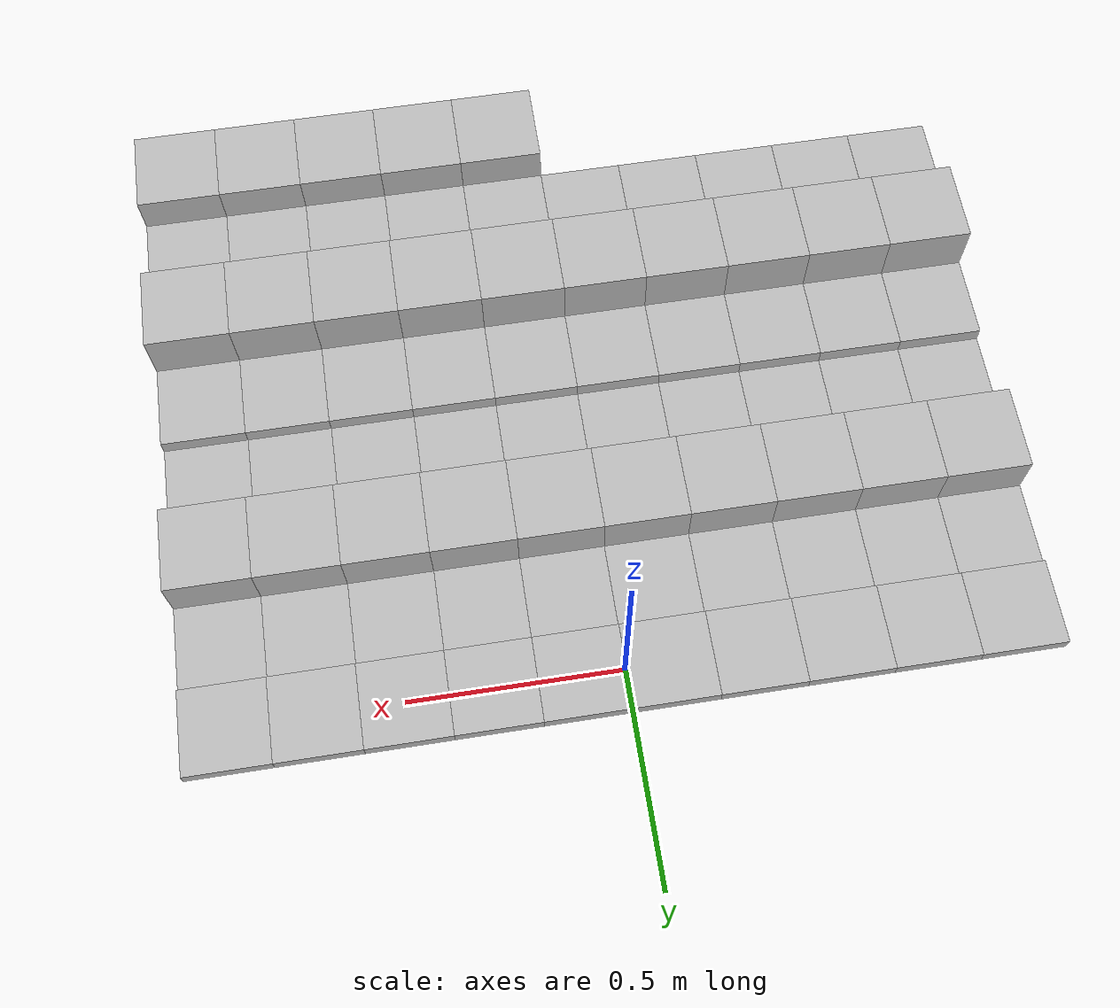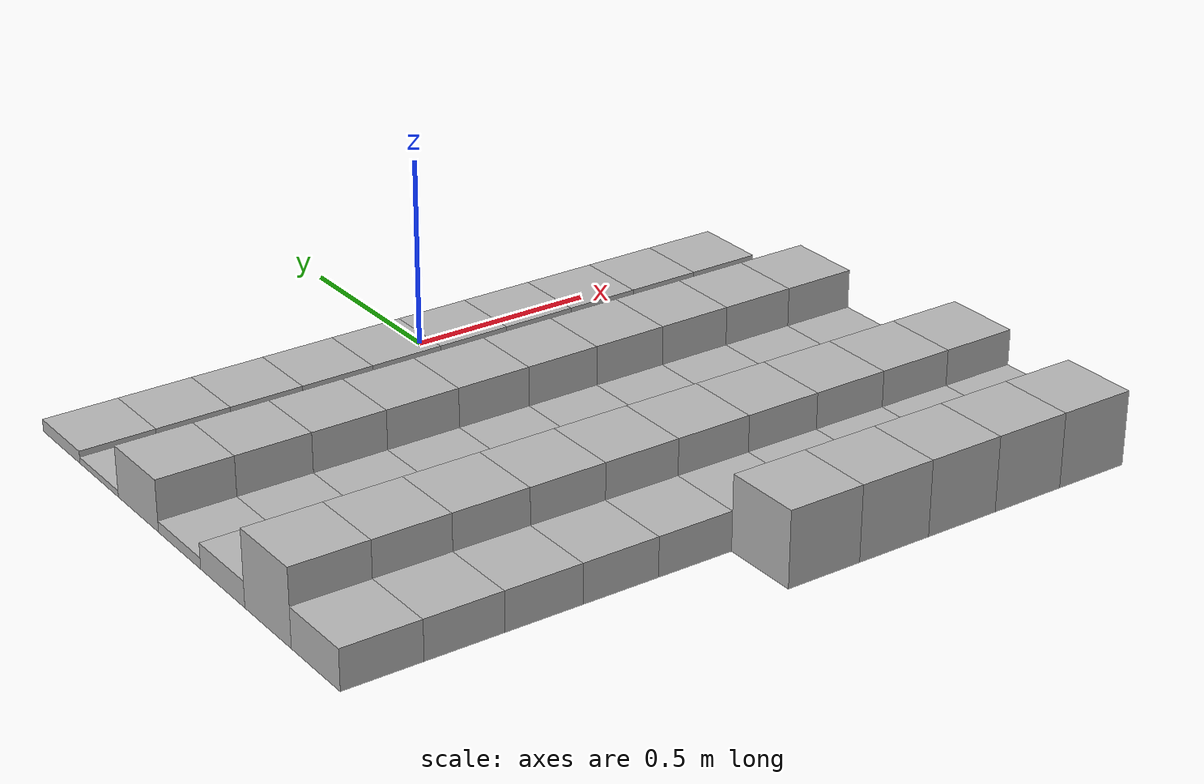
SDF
<sdf version="1.6">
 <model name="Terrain">
  <static>true</static>
  <link name="box_0_0">
   <pose>-0.9 0.0 0.0161761106222 0 0 0</pose>
   <inertial>
    <mass>1.0</mass>
    <inertia><ixx>0.0</ixx><ixy>0.0</ixy><ixz>0.0</ixz><iyy>0.0</iyy><iyz>0.0</iyz><izz>0.0</izz></inertia>
   </inertial>
   <collision name="collision"><geometry><box><size>0.2 0.2 0.0323522212445</size></box></geometry></collision>
   <visual name="visual"><geometry><box><size>0.2 0.2 0.0323522212445</size></box></geometry></visual>
  </link>
  <link name="box_0_1">
   <pose>-0.7 0.0 0.0161761106222 0 0 0</pose>
   <inertial>
    <mass>1.0</mass>
    <inertia><ixx>0.0</ixx><ixy>0.0</ixy><ixz>0.0</ixz><iyy>0.0</iyy><iyz>0.0</iyz><izz>0.0</izz></inertia>
   </inertial>
   <collision name="collision"><geometry><box><size>0.2 0.2 0.0323522212445</size></box></geometry></collision>
   <visual name="visual"><geometry><box><size>0.2 0.2 0.0323522212445</size></box></geometry></visual>
  </link>
  <link name="box_0_2">
   <pose>-0.5 0.0 0.0161761106222 0 0 0</pose>
   <inertial>
    <mass>1.0</mass>
    <inertia><ixx>0.0</ixx><ixy>0.0</ixy><ixz>0.0</ixz><iyy>0.0</iyy><iyz>0.0</iyz><izz>0.0</izz></inertia>
   </inertial>
   <collision name="collision"><geometry><box><size>0.2 0.2 0.0323522212445</size></box></geometry></collision>
   <visual name="visual"><geometry><box><size>0.2 0.2 0.0323522212445</size></box></geometry></visual>
  </link>
  <link name="box_0_3">
   <pose>-0.3 0.0 0.0161761106222 0 0 0</pose>
   <inertial>
    <mass>1.0</mass>
    <inertia><ixx>0.0</ixx><ixy>0.0</ixy><ixz>0.0</ixz><iyy>0.0</iyy><iyz>0.0</iyz><izz>0.0</izz></inertia>
   </inertial>
   <collision name="collision"><geometry><box><size>0.2 0.2 0.0323522212445</size></box></geometry></collision>
   <visual name="visual"><geometry><box><size>0.2 0.2 0.0323522212445</size></box></geometry></visual>
  </link>
  <link name="box_0_4">
   <pose>-0.1 0.0 0.0161761106222 0 0 0</pose>
   <inertial>
    <mass>1.0</mass>
    <inertia><ixx>0.0</ixx><ixy>0.0</ixy><ixz>0.0</ixz><iyy>0.0</iyy><iyz>0.0</iyz><izz>0.0</izz></inertia>
   </inertial>
   <collision name="collision"><geometry><box><size>0.2 0.2 0.0323522212445</size></box></geometry></collision>
   <visual name="visual"><geometry><box><size>0.2 0.2 0.0323522212445</size></box></geometry></visual>
  </link>
  <link name="box_0_5">
   <pose>0.1 0.0 0.0161761106222 0 0 0</pose>
   <inertial>
    <mass>1.0</mass>
    <inertia><ixx>0.0</ixx><ixy>0.0</ixy><ixz>0.0</ixz><iyy>0.0</iyy><iyz>0.0</iyz><izz>0.0</izz></inertia>
   </inertial>
   <collision name="collision"><geometry><box><size>0.2 0.2 0.0323522212445</size></box></geometry></collision>
   <visual name="visual"><geometry><box><size>0.2 0.2 0.0323522212445</size></box></geometry></visual>
  </link>
  <link name="box_0_6">
   <pose>0.3 0.0 0.0161761106222 0 0 0</pose>
   <inertial>
    <mass>1.0</mass>
    <inertia><ixx>0.0</ixx><ixy>0.0</ixy><ixz>0.0</ixz><iyy>0.0</iyy><iyz>0.0</iyz><izz>0.0</izz></inertia>
   </inertial>
   <collision name="collision"><geometry><box><size>0.2 0.2 0.0323522212445</size></box></geometry></collision>
   <visual name="visual"><geometry><box><size>0.2 0.2 0.0323522212445</size></box></geometry></visual>
  </link>
  <link name="box_0_7">
   <pose>0.5 0.0 0.0161761106222 0 0 0</pose>
   <inertial>
    <mass>1.0</mass>
    <inertia><ixx>0.0</ixx><ixy>0.0</ixy><ixz>0.0</ixz><iyy>0.0</iyy><iyz>0.0</iyz><izz>0.0</izz></inertia>
   </inertial>
   <collision name="collision"><geometry><box><size>0.2 0.2 0.0323522212445</size></box></geometry></collision>
   <visual name="visual"><geometry><box><size>0.2 0.2 0.0323522212445</size></box></geometry></visual>
  </link>
  <link name="box_0_8">
   <pose>0.7 0.0 0.0161761106222 0 0 0</pose>
   <inertial>
    <mass>1.0</mass>
    <inertia><ixx>0.0</ixx><ixy>0.0</ixy><ixz>0.0</ixz><iyy>0.0</iyy><iyz>0.0</iyz><izz>0.0</izz></inertia>
   </inertial>
   <collision name="collision"><geometry><box><size>0.2 0.2 0.0323522212445</size></box></geometry></collision>
   <visual name="visual"><geometry><box><size>0.2 0.2 0.0323522212445</size></box></geometry></visual>
  </link>
  <link name="box_0_9">
   <pose>0.9 0.0 0.0161761106222 0 0 0</pose>
   <inertial>
    <mass>1.0</mass>
    <inertia><ixx>0.0</ixx><ixy>0.0</ixy><ixz>0.0</ixz><iyy>0.0</iyy><iyz>0.0</iyz><izz>0.0</izz></inertia>
   </inertial>
   <collision name="collision"><geometry><box><size>0.2 0.2 0.0323522212445</size></box></geometry></collision>
   <visual name="visual"><geometry><box><size>0.2 0.2 0.0323522212445</size></box></geometry></visual>
  </link>
  <link name="box_1_0">
   <pose>-0.9 -0.2 0.00833342037951 0 0 0</pose>
   <inertial>
    <mass>1.0</mass>
    <inertia><ixx>0.0</ixx><ixy>0.0</ixy><ixz>0.0</ixz><iyy>0.0</iyy><iyz>0.0</iyz><izz>0.0</izz></inertia>
   </inertial>
   <collision name="collision"><geometry><box><size>0.2 0.2 0.016666840759</size></box></geometry></collision>
   <visual name="visual"><geometry><box><size>0.2 0.2 0.016666840759</size></box></geometry></visual>
  </link>
  <link name="box_1_1">
   <pose>-0.7 -0.2 0.00833342037951 0 0 0</pose>
   <inertial>
    <mass>1.0</mass>
    <inertia><ixx>0.0</ixx><ixy>0.0</ixy><ixz>0.0</ixz><iyy>0.0</iyy><iyz>0.0</iyz><izz>0.0</izz></inertia>
   </inertial>
   <collision name="collision"><geometry><box><size>0.2 0.2 0.016666840759</size></box></geometry></collision>
   <visual name="visual"><geometry><box><size>0.2 0.2 0.016666840759</size></box></geometry></visual>
  </link>
  <link name="box_1_2">
   <pose>-0.5 -0.2 0.00833342037951 0 0 0</pose>
   <inertial>
    <mass>1.0</mass>
    <inertia><ixx>0.0</ixx><ixy>0.0</ixy><ixz>0.0</ixz><iyy>0.0</iyy><iyz>0.0</iyz><izz>0.0</izz></inertia>
   </inertial>
   <collision name="collision"><geometry><box><size>0.2 0.2 0.016666840759</size></box></geometry></collision>
   <visual name="visual"><geometry><box><size>0.2 0.2 0.016666840759</size></box></geometry></visual>
  </link>
  <link name="box_1_3">
   <pose>-0.3 -0.2 0.00833342037951 0 0 0</pose>
   <inertial>
    <mass>1.0</mass>
    <inertia><ixx>0.0</ixx><ixy>0.0</ixy><ixz>0.0</ixz><iyy>0.0</iyy><iyz>0.0</iyz><izz>0.0</izz></inertia>
   </inertial>
   <collision name="collision"><geometry><box><size>0.2 0.2 0.016666840759</size></box></geometry></collision>
   <visual name="visual"><geometry><box><size>0.2 0.2 0.016666840759</size></box></geometry></visual>
  </link>
  <link name="box_1_4">
   <pose>-0.1 -0.2 0.00833342037951 0 0 0</pose>
   <inertial>
    <mass>1.0</mass>
    <inertia><ixx>0.0</ixx><ixy>0.0</ixy><ixz>0.0</ixz><iyy>0.0</iyy><iyz>0.0</iyz><izz>0.0</izz></inertia>
   </inertial>
   <collision name="collision"><geometry><box><size>0.2 0.2 0.016666840759</size></box></geometry></collision>
   <visual name="visual"><geometry><box><size>0.2 0.2 0.016666840759</size></box></geometry></visual>
  </link>
  <link name="box_1_5">
   <pose>0.1 -0.2 0.00833342037951 0 0 0</pose>
   <inertial>
    <mass>1.0</mass>
    <inertia><ixx>0.0</ixx><ixy>0.0</ixy><ixz>0.0</ixz><iyy>0.0</iyy><iyz>0.0</iyz><izz>0.0</izz></inertia>
   </inertial>
   <collision name="collision"><geometry><box><size>0.2 0.2 0.016666840759</size></box></geometry></collision>
   <visual name="visual"><geometry><box><size>0.2 0.2 0.016666840759</size></box></geometry></visual>
  </link>
  <link name="box_1_6">
   <pose>0.3 -0.2 0.00833342037951 0 0 0</pose>
   <inertial>
    <mass>1.0</mass>
    <inertia><ixx>0.0</ixx><ixy>0.0</ixy><ixz>0.0</ixz><iyy>0.0</iyy><iyz>0.0</iyz><izz>0.0</izz></inertia>
   </inertial>
   <collision name="collision"><geometry><box><size>0.2 0.2 0.016666840759</size></box></geometry></collision>
   <visual name="visual"><geometry><box><size>0.2 0.2 0.016666840759</size></box></geometry></visual>
  </link>
  <link name="box_1_7">
   <pose>0.5 -0.2 0.00833342037951 0 0 0</pose>
   <inertial>
    <mass>1.0</mass>
    <inertia><ixx>0.0</ixx><ixy>0.0</ixy><ixz>0.0</ixz><iyy>0.0</iyy><iyz>0.0</iyz><izz>0.0</izz></inertia>
   </inertial>
   <collision name="collision"><geometry><box><size>0.2 0.2 0.016666840759</size></box></geometry></collision>
   <visual name="visual"><geometry><box><size>0.2 0.2 0.016666840759</size></box></geometry></visual>
  </link>
  <link name="box_1_8">
   <pose>0.7 -0.2 0.00833342037951 0 0 0</pose>
   <inertial>
    <mass>1.0</mass>
    <inertia><ixx>0.0</ixx><ixy>0.0</ixy><ixz>0.0</ixz><iyy>0.0</iyy><iyz>0.0</iyz><izz>0.0</izz></inertia>
   </inertial>
   <collision name="collision"><geometry><box><size>0.2 0.2 0.016666840759</size></box></geometry></collision>
   <visual name="visual"><geometry><box><size>0.2 0.2 0.016666840759</size></box></geometry></visual>
  </link>
  <link name="box_1_9">
   <pose>0.9 -0.2 0.00833342037951 0 0 0</pose>
   <inertial>
    <mass>1.0</mass>
    <inertia><ixx>0.0</ixx><ixy>0.0</ixy><ixz>0.0</ixz><iyy>0.0</iyy><iyz>0.0</iyz><izz>0.0</izz></inertia>
   </inertial>
   <collision name="collision"><geometry><box><size>0.2 0.2 0.016666840759</size></box></geometry></collision>
   <visual name="visual"><geometry><box><size>0.2 0.2 0.016666840759</size></box></geometry></visual>
  </link>
  <link name="box_2_0">
   <pose>-0.9 -0.4 0.0664970218018 0 0 0</pose>
   <inertial>
    <mass>1.0</mass>
    <inertia><ixx>0.0</ixx><ixy>0.0</ixy><ixz>0.0</ixz><iyy>0.0</iyy><iyz>0.0</iyz><izz>0.0</izz></inertia>
   </inertial>
   <collision name="collision"><geometry><box><size>0.2 0.2 0.132994043604</size></box></geometry></collision>
   <visual name="visual"><geometry><box><size>0.2 0.2 0.132994043604</size></box></geometry></visual>
  </link>
  <link name="box_2_1">
   <pose>-0.7 -0.4 0.0664970218018 0 0 0</pose>
   <inertial>
    <mass>1.0</mass>
    <inertia><ixx>0.0</ixx><ixy>0.0</ixy><ixz>0.0</ixz><iyy>0.0</iyy><iyz>0.0</iyz><izz>0.0</izz></inertia>
   </inertial>
   <collision name="collision"><geometry><box><size>0.2 0.2 0.132994043604</size></box></geometry></collision>
   <visual name="visual"><geometry><box><size>0.2 0.2 0.132994043604</size></box></geometry></visual>
  </link>
  <link name="box_2_2">
   <pose>-0.5 -0.4 0.0664970218018 0 0 0</pose>
   <inertial>
    <mass>1.0</mass>
    <inertia><ixx>0.0</ixx><ixy>0.0</ixy><ixz>0.0</ixz><iyy>0.0</iyy><iyz>0.0</iyz><izz>0.0</izz></inertia>
   </inertial>
   <collision name="collision"><geometry><box><size>0.2 0.2 0.132994043604</size></box></geometry></collision>
   <visual name="visual"><geometry><box><size>0.2 0.2 0.132994043604</size></box></geometry></visual>
  </link>
  <link name="box_2_3">
   <pose>-0.3 -0.4 0.0664970218018 0 0 0</pose>
   <inertial>
    <mass>1.0</mass>
    <inertia><ixx>0.0</ixx><ixy>0.0</ixy><ixz>0.0</ixz><iyy>0.0</iyy><iyz>0.0</iyz><izz>0.0</izz></inertia>
   </inertial>
   <collision name="collision"><geometry><box><size>0.2 0.2 0.132994043604</size></box></geometry></collision>
   <visual name="visual"><geometry><box><size>0.2 0.2 0.132994043604</size></box></geometry></visual>
  </link>
  <link name="box_2_4">
   <pose>-0.1 -0.4 0.0664970218018 0 0 0</pose>
   <inertial>
    <mass>1.0</mass>
    <inertia><ixx>0.0</ixx><ixy>0.0</ixy><ixz>0.0</ixz><iyy>0.0</iyy><iyz>0.0</iyz><izz>0.0</izz></inertia>
   </inertial>
   <collision name="collision"><geometry><box><size>0.2 0.2 0.132994043604</size></box></geometry></collision>
   <visual name="visual"><geometry><box><size>0.2 0.2 0.132994043604</size></box></geometry></visual>
  </link>
  <link name="box_2_5">
   <pose>0.1 -0.4 0.0664970218018 0 0 0</pose>
   <inertial>
    <mass>1.0</mass>
    <inertia><ixx>0.0</ixx><ixy>0.0</ixy><ixz>0.0</ixz><iyy>0.0</iyy><iyz>0.0</iyz><izz>0.0</izz></inertia>
   </inertial>
   <collision name="collision"><geometry><box><size>0.2 0.2 0.132994043604</size></box></geometry></collision>
   <visual name="visual"><geometry><box><size>0.2 0.2 0.132994043604</size></box></geometry></visual>
  </link>
  <link name="box_2_6">
   <pose>0.3 -0.4 0.0664970218018 0 0 0</pose>
   <inertial>
    <mass>1.0</mass>
    <inertia><ixx>0.0</ixx><ixy>0.0</ixy><ixz>0.0</ixz><iyy>0.0</iyy><iyz>0.0</iyz><izz>0.0</izz></inertia>
   </inertial>
   <collision name="collision"><geometry><box><size>0.2 0.2 0.132994043604</size></box></geometry></collision>
   <visual name="visual"><geometry><box><size>0.2 0.2 0.132994043604</size></box></geometry></visual>
  </link>
  <link name="box_2_7">
   <pose>0.5 -0.4 0.0664970218018 0 0 0</pose>
   <inertial>
    <mass>1.0</mass>
    <inertia><ixx>0.0</ixx><ixy>0.0</ixy><ixz>0.0</ixz><iyy>0.0</iyy><iyz>0.0</iyz><izz>0.0</izz></inertia>
   </inertial>
   <collision name="collision"><geometry><box><size>0.2 0.2 0.132994043604</size></box></geometry></collision>
   <visual name="visual"><geometry><box><size>0.2 0.2 0.132994043604</size></box></geometry></visual>
  </link>
  <link name="box_2_8">
   <pose>0.7 -0.4 0.0664970218018 0 0 0</pose>
   <inertial>
    <mass>1.0</mass>
    <inertia><ixx>0.0</ixx><ixy>0.0</ixy><ixz>0.0</ixz><iyy>0.0</iyy><iyz>0.0</iyz><izz>0.0</izz></inertia>
   </inertial>
   <collision name="collision"><geometry><box><size>0.2 0.2 0.132994043604</size></box></geometry></collision>
   <visual name="visual"><geometry><box><size>0.2 0.2 0.132994043604</size></box></geometry></visual>
  </link>
  <link name="box_2_9">
   <pose>0.9 -0.4 0.0664970218018 0 0 0</pose>
   <inertial>
    <mass>1.0</mass>
    <inertia><ixx>0.0</ixx><ixy>0.0</ixy><ixz>0.0</ixz><iyy>0.0</iyy><iyz>0.0</iyz><izz>0.0</izz></inertia>
   </inertial>
   <collision name="collision"><geometry><box><size>0.2 0.2 0.132994043604</size></box></geometry></collision>
   <visual name="visual"><geometry><box><size>0.2 0.2 0.132994043604</size></box></geometry></visual>
  </link>
  <link name="box_3_0">
   <pose>-0.9 -0.6 0.0142871577334 0 0 0</pose>
   <inertial>
    <mass>1.0</mass>
    <inertia><ixx>0.0</ixx><ixy>0.0</ixy><ixz>0.0</ixz><iyy>0.0</iyy><iyz>0.0</iyz><izz>0.0</izz></inertia>
   </inertial>
   <collision name="collision"><geometry><box><size>0.2 0.2 0.0285743154668</size></box></geometry></collision>
   <visual name="visual"><geometry><box><size>0.2 0.2 0.0285743154668</size></box></geometry></visual>
  </link>
  <link name="box_3_1">
   <pose>-0.7 -0.6 0.0142871577334 0 0 0</pose>
   <inertial>
    <mass>1.0</mass>
    <inertia><ixx>0.0</ixx><ixy>0.0</ixy><ixz>0.0</ixz><iyy>0.0</iyy><iyz>0.0</iyz><izz>0.0</izz></inertia>
   </inertial>
   <collision name="collision"><geometry><box><size>0.2 0.2 0.0285743154668</size></box></geometry></collision>
   <visual name="visual"><geometry><box><size>0.2 0.2 0.0285743154668</size></box></geometry></visual>
  </link>
  <link name="box_3_2">
   <pose>-0.5 -0.6 0.0142871577334 0 0 0</pose>
   <inertial>
    <mass>1.0</mass>
    <inertia><ixx>0.0</ixx><ixy>0.0</ixy><ixz>0.0</ixz><iyy>0.0</iyy><iyz>0.0</iyz><izz>0.0</izz></inertia>
   </inertial>
   <collision name="collision"><geometry><box><size>0.2 0.2 0.0285743154668</size></box></geometry></collision>
   <visual name="visual"><geometry><box><size>0.2 0.2 0.0285743154668</size></box></geometry></visual>
  </link>
  <link name="box_3_3">
   <pose>-0.3 -0.6 0.0142871577334 0 0 0</pose>
   <inertial>
    <mass>1.0</mass>
    <inertia><ixx>0.0</ixx><ixy>0.0</ixy><ixz>0.0</ixz><iyy>0.0</iyy><iyz>0.0</iyz><izz>0.0</izz></inertia>
   </inertial>
   <collision name="collision"><geometry><box><size>0.2 0.2 0.0285743154668</size></box></geometry></collision>
   <visual name="visual"><geometry><box><size>0.2 0.2 0.0285743154668</size></box></geometry></visual>
  </link>
  <link name="box_3_4">
   <pose>-0.1 -0.6 0.0142871577334 0 0 0</pose>
   <inertial>
    <mass>1.0</mass>
    <inertia><ixx>0.0</ixx><ixy>0.0</ixy><ixz>0.0</ixz><iyy>0.0</iyy><iyz>0.0</iyz><izz>0.0</izz></inertia>
   </inertial>
   <collision name="collision"><geometry><box><size>0.2 0.2 0.0285743154668</size></box></geometry></collision>
   <visual name="visual"><geometry><box><size>0.2 0.2 0.0285743154668</size></box></geometry></visual>
  </link>
  <link name="box_3_5">
   <pose>0.1 -0.6 0.0142871577334 0 0 0</pose>
   <inertial>
    <mass>1.0</mass>
    <inertia><ixx>0.0</ixx><ixy>0.0</ixy><ixz>0.0</ixz><iyy>0.0</iyy><iyz>0.0</iyz><izz>0.0</izz></inertia>
   </inertial>
   <collision name="collision"><geometry><box><size>0.2 0.2 0.0285743154668</size></box></geometry></collision>
   <visual name="visual"><geometry><box><size>0.2 0.2 0.0285743154668</size></box></geometry></visual>
  </link>
  <link name="box_3_6">
   <pose>0.3 -0.6 0.0142871577334 0 0 0</pose>
   <inertial>
    <mass>1.0</mass>
    <inertia><ixx>0.0</ixx><ixy>0.0</ixy><ixz>0.0</ixz><iyy>0.0</iyy><iyz>0.0</iyz><izz>0.0</izz></inertia>
   </inertial>
   <collision name="collision"><geometry><box><size>0.2 0.2 0.0285743154668</size></box></geometry></collision>
   <visual name="visual"><geometry><box><size>0.2 0.2 0.0285743154668</size></box></geometry></visual>
  </link>
  <link name="box_3_7">
   <pose>0.5 -0.6 0.0142871577334 0 0 0</pose>
   <inertial>
    <mass>1.0</mass>
    <inertia><ixx>0.0</ixx><ixy>0.0</ixy><ixz>0.0</ixz><iyy>0.0</iyy><iyz>0.0</iyz><izz>0.0</izz></inertia>
   </inertial>
   <collision name="collision"><geometry><box><size>0.2 0.2 0.0285743154668</size></box></geometry></collision>
   <visual name="visual"><geometry><box><size>0.2 0.2 0.0285743154668</size></box></geometry></visual>
  </link>
  <link name="box_3_8">
   <pose>0.7 -0.6 0.0142871577334 0 0 0</pose>
   <inertial>
    <mass>1.0</mass>
    <inertia><ixx>0.0</ixx><ixy>0.0</ixy><ixz>0.0</ixz><iyy>0.0</iyy><iyz>0.0</iyz><izz>0.0</izz></inertia>
   </inertial>
   <collision name="collision"><geometry><box><size>0.2 0.2 0.0285743154668</size></box></geometry></collision>
   <visual name="visual"><geometry><box><size>0.2 0.2 0.0285743154668</size></box></geometry></visual>
  </link>
  <link name="box_3_9">
   <pose>0.9 -0.6 0.0142871577334 0 0 0</pose>
   <inertial>
    <mass>1.0</mass>
    <inertia><ixx>0.0</ixx><ixy>0.0</ixy><ixz>0.0</ixz><iyy>0.0</iyy><iyz>0.0</iyz><izz>0.0</izz></inertia>
   </inertial>
   <collision name="collision"><geometry><box><size>0.2 0.2 0.0285743154668</size></box></geometry></collision>
   <visual name="visual"><geometry><box><size>0.2 0.2 0.0285743154668</size></box></geometry></visual>
  </link>
  <link name="box_4_0">
   <pose>-0.9 -0.8 0.0331260826066 0 0 0</pose>
   <inertial>
    <mass>1.0</mass>
    <inertia><ixx>0.0</ixx><ixy>0.0</ixy><ixz>0.0</ixz><iyy>0.0</iyy><iyz>0.0</iyz><izz>0.0</izz></inertia>
   </inertial>
   <collision name="collision"><geometry><box><size>0.2 0.2 0.0662521652133</size></box></geometry></collision>
   <visual name="visual"><geometry><box><size>0.2 0.2 0.0662521652133</size></box></geometry></visual>
  </link>
  <link name="box_4_1">
   <pose>-0.7 -0.8 0.0331260826066 0 0 0</pose>
   <inertial>
    <mass>1.0</mass>
    <inertia><ixx>0.0</ixx><ixy>0.0</ixy><ixz>0.0</ixz><iyy>0.0</iyy><iyz>0.0</iyz><izz>0.0</izz></inertia>
   </inertial>
   <collision name="collision"><geometry><box><size>0.2 0.2 0.0662521652133</size></box></geometry></collision>
   <visual name="visual"><geometry><box><size>0.2 0.2 0.0662521652133</size></box></geometry></visual>
  </link>
  <link name="box_4_2">
   <pose>-0.5 -0.8 0.0331260826066 0 0 0</pose>
   <inertial>
    <mass>1.0</mass>
    <inertia><ixx>0.0</ixx><ixy>0.0</ixy><ixz>0.0</ixz><iyy>0.0</iyy><iyz>0.0</iyz><izz>0.0</izz></inertia>
   </inertial>
   <collision name="collision"><geometry><box><size>0.2 0.2 0.0662521652133</size></box></geometry></collision>
   <visual name="visual"><geometry><box><size>0.2 0.2 0.0662521652133</size></box></geometry></visual>
  </link>
  <link name="box_4_3">
   <pose>-0.3 -0.8 0.0331260826066 0 0 0</pose>
   <inertial>
    <mass>1.0</mass>
    <inertia><ixx>0.0</ixx><ixy>0.0</ixy><ixz>0.0</ixz><iyy>0.0</iyy><iyz>0.0</iyz><izz>0.0</izz></inertia>
   </inertial>
   <collision name="collision"><geometry><box><size>0.2 0.2 0.0662521652133</size></box></geometry></collision>
   <visual name="visual"><geometry><box><size>0.2 0.2 0.0662521652133</size></box></geometry></visual>
  </link>
  <link name="box_4_4">
   <pose>-0.1 -0.8 0.0331260826066 0 0 0</pose>
   <inertial>
    <mass>1.0</mass>
    <inertia><ixx>0.0</ixx><ixy>0.0</ixy><ixz>0.0</ixz><iyy>0.0</iyy><iyz>0.0</iyz><izz>0.0</izz></inertia>
   </inertial>
   <collision name="collision"><geometry><box><size>0.2 0.2 0.0662521652133</size></box></geometry></collision>
   <visual name="visual"><geometry><box><size>0.2 0.2 0.0662521652133</size></box></geometry></visual>
  </link>
  <link name="box_4_5">
   <pose>0.1 -0.8 0.0331260826066 0 0 0</pose>
   <inertial>
    <mass>1.0</mass>
    <inertia><ixx>0.0</ixx><ixy>0.0</ixy><ixz>0.0</ixz><iyy>0.0</iyy><iyz>0.0</iyz><izz>0.0</izz></inertia>
   </inertial>
   <collision name="collision"><geometry><box><size>0.2 0.2 0.0662521652133</size></box></geometry></collision>
   <visual name="visual"><geometry><box><size>0.2 0.2 0.0662521652133</size></box></geometry></visual>
  </link>
  <link name="box_4_6">
   <pose>0.3 -0.8 0.0331260826066 0 0 0</pose>
   <inertial>
    <mass>1.0</mass>
    <inertia><ixx>0.0</ixx><ixy>0.0</ixy><ixz>0.0</ixz><iyy>0.0</iyy><iyz>0.0</iyz><izz>0.0</izz></inertia>
   </inertial>
   <collision name="collision"><geometry><box><size>0.2 0.2 0.0662521652133</size></box></geometry></collision>
   <visual name="visual"><geometry><box><size>0.2 0.2 0.0662521652133</size></box></geometry></visual>
  </link>
  <link name="box_4_7">
   <pose>0.5 -0.8 0.0331260826066 0 0 0</pose>
   <inertial>
    <mass>1.0</mass>
    <inertia><ixx>0.0</ixx><ixy>0.0</ixy><ixz>0.0</ixz><iyy>0.0</iyy><iyz>0.0</iyz><izz>0.0</izz></inertia>
   </inertial>
   <collision name="collision"><geometry><box><size>0.2 0.2 0.0662521652133</size></box></geometry></collision>
   <visual name="visual"><geometry><box><size>0.2 0.2 0.0662521652133</size></box></geometry></visual>
  </link>
  <link name="box_4_8">
   <pose>0.7 -0.8 0.0331260826066 0 0 0</pose>
   <inertial>
    <mass>1.0</mass>
    <inertia><ixx>0.0</ixx><ixy>0.0</ixy><ixz>0.0</ixz><iyy>0.0</iyy><iyz>0.0</iyz><izz>0.0</izz></inertia>
   </inertial>
   <collision name="collision"><geometry><box><size>0.2 0.2 0.0662521652133</size></box></geometry></collision>
   <visual name="visual"><geometry><box><size>0.2 0.2 0.0662521652133</size></box></geometry></visual>
  </link>
  <link name="box_4_9">
   <pose>0.9 -0.8 0.0331260826066 0 0 0</pose>
   <inertial>
    <mass>1.0</mass>
    <inertia><ixx>0.0</ixx><ixy>0.0</ixy><ixz>0.0</ixz><iyy>0.0</iyy><iyz>0.0</iyz><izz>0.0</izz></inertia>
   </inertial>
   <collision name="collision"><geometry><box><size>0.2 0.2 0.0662521652133</size></box></geometry></collision>
   <visual name="visual"><geometry><box><size>0.2 0.2 0.0662521652133</size></box></geometry></visual>
  </link>
  <link name="box_5_0">
   <pose>-0.9 -1.0 0.0975700708406 0 0 0</pose>
   <inertial>
    <mass>1.0</mass>
    <inertia><ixx>0.0</ixx><ixy>0.0</ixy><ixz>0.0</ixz><iyy>0.0</iyy><iyz>0.0</iyz><izz>0.0</izz></inertia>
   </inertial>
   <collision name="collision"><geometry><box><size>0.2 0.2 0.195140141681</size></box></geometry></collision>
   <visual name="visual"><geometry><box><size>0.2 0.2 0.195140141681</size></box></geometry></visual>
  </link>
  <link name="box_5_1">
   <pose>-0.7 -1.0 0.0975700708406 0 0 0</pose>
   <inertial>
    <mass>1.0</mass>
    <inertia><ixx>0.0</ixx><ixy>0.0</ixy><ixz>0.0</ixz><iyy>0.0</iyy><iyz>0.0</iyz><izz>0.0</izz></inertia>
   </inertial>
   <collision name="collision"><geometry><box><size>0.2 0.2 0.195140141681</size></box></geometry></collision>
   <visual name="visual"><geometry><box><size>0.2 0.2 0.195140141681</size></box></geometry></visual>
  </link>
  <link name="box_5_2">
   <pose>-0.5 -1.0 0.0975700708406 0 0 0</pose>
   <inertial>
    <mass>1.0</mass>
    <inertia><ixx>0.0</ixx><ixy>0.0</ixy><ixz>0.0</ixz><iyy>0.0</iyy><iyz>0.0</iyz><izz>0.0</izz></inertia>
   </inertial>
   <collision name="collision"><geometry><box><size>0.2 0.2 0.195140141681</size></box></geometry></collision>
   <visual name="visual"><geometry><box><size>0.2 0.2 0.195140141681</size></box></geometry></visual>
  </link>
  <link name="box_5_3">
   <pose>-0.3 -1.0 0.0975700708406 0 0 0</pose>
   <inertial>
    <mass>1.0</mass>
    <inertia><ixx>0.0</ixx><ixy>0.0</ixy><ixz>0.0</ixz><iyy>0.0</iyy><iyz>0.0</iyz><izz>0.0</izz></inertia>
   </inertial>
   <collision name="collision"><geometry><box><size>0.2 0.2 0.195140141681</size></box></geometry></collision>
   <visual name="visual"><geometry><box><size>0.2 0.2 0.195140141681</size></box></geometry></visual>
  </link>
  <link name="box_5_4">
   <pose>-0.1 -1.0 0.0975700708406 0 0 0</pose>
   <inertial>
    <mass>1.0</mass>
    <inertia><ixx>0.0</ixx><ixy>0.0</ixy><ixz>0.0</ixz><iyy>0.0</iyy><iyz>0.0</iyz><izz>0.0</izz></inertia>
   </inertial>
   <collision name="collision"><geometry><box><size>0.2 0.2 0.195140141681</size></box></geometry></collision>
   <visual name="visual"><geometry><box><size>0.2 0.2 0.195140141681</size></box></geometry></visual>
  </link>
  <link name="box_5_5">
   <pose>0.1 -1.0 0.0975700708406 0 0 0</pose>
   <inertial>
    <mass>1.0</mass>
    <inertia><ixx>0.0</ixx><ixy>0.0</ixy><ixz>0.0</ixz><iyy>0.0</iyy><iyz>0.0</iyz><izz>0.0</izz></inertia>
   </inertial>
   <collision name="collision"><geometry><box><size>0.2 0.2 0.195140141681</size></box></geometry></collision>
   <visual name="visual"><geometry><box><size>0.2 0.2 0.195140141681</size></box></geometry></visual>
  </link>
  <link name="box_5_6">
   <pose>0.3 -1.0 0.0975700708406 0 0 0</pose>
   <inertial>
    <mass>1.0</mass>
    <inertia><ixx>0.0</ixx><ixy>0.0</ixy><ixz>0.0</ixz><iyy>0.0</iyy><iyz>0.0</iyz><izz>0.0</izz></inertia>
   </inertial>
   <collision name="collision"><geometry><box><size>0.2 0.2 0.195140141681</size></box></geometry></collision>
   <visual name="visual"><geometry><box><size>0.2 0.2 0.195140141681</size></box></geometry></visual>
  </link>
  <link name="box_5_7">
   <pose>0.5 -1.0 0.0975700708406 0 0 0</pose>
   <inertial>
    <mass>1.0</mass>
    <inertia><ixx>0.0</ixx><ixy>0.0</ixy><ixz>0.0</ixz><iyy>0.0</iyy><iyz>0.0</iyz><izz>0.0</izz></inertia>
   </inertial>
   <collision name="collision"><geometry><box><size>0.2 0.2 0.195140141681</size></box></geometry></collision>
   <visual name="visual"><geometry><box><size>0.2 0.2 0.195140141681</size></box></geometry></visual>
  </link>
  <link name="box_5_8">
   <pose>0.7 -1.0 0.0975700708406 0 0 0</pose>
   <inertial>
    <mass>1.0</mass>
    <inertia><ixx>0.0</ixx><ixy>0.0</ixy><ixz>0.0</ixz><iyy>0.0</iyy><iyz>0.0</iyz><izz>0.0</izz></inertia>
   </inertial>
   <collision name="collision"><geometry><box><size>0.2 0.2 0.195140141681</size></box></geometry></collision>
   <visual name="visual"><geometry><box><size>0.2 0.2 0.195140141681</size></box></geometry></visual>
  </link>
  <link name="box_5_9">
   <pose>0.9 -1.0 0.0975700708406 0 0 0</pose>
   <inertial>
    <mass>1.0</mass>
    <inertia><ixx>0.0</ixx><ixy>0.0</ixy><ixz>0.0</ixz><iyy>0.0</iyy><iyz>0.0</iyz><izz>0.0</izz></inertia>
   </inertial>
   <collision name="collision"><geometry><box><size>0.2 0.2 0.195140141681</size></box></geometry></collision>
   <visual name="visual"><geometry><box><size>0.2 0.2 0.195140141681</size></box></geometry></visual>
  </link>
  <link name="box_6_0">
   <pose>-0.9 -1.2 0.050745379571 0 0 0</pose>
   <inertial>
    <mass>1.0</mass>
    <inertia><ixx>0.0</ixx><ixy>0.0</ixy><ixz>0.0</ixz><iyy>0.0</iyy><iyz>0.0</iyz><izz>0.0</izz></inertia>
   </inertial>
   <collision name="collision"><geometry><box><size>0.2 0.2 0.101490759142</size></box></geometry></collision>
   <visual name="visual"><geometry><box><size>0.2 0.2 0.101490759142</size></box></geometry></visual>
  </link>
  <link name="box_6_1">
   <pose>-0.7 -1.2 0.050745379571 0 0 0</pose>
   <inertial>
    <mass>1.0</mass>
    <inertia><ixx>0.0</ixx><ixy>0.0</ixy><ixz>0.0</ixz><iyy>0.0</iyy><iyz>0.0</iyz><izz>0.0</izz></inertia>
   </inertial>
   <collision name="collision"><geometry><box><size>0.2 0.2 0.101490759142</size></box></geometry></collision>
   <visual name="visual"><geometry><box><size>0.2 0.2 0.101490759142</size></box></geometry></visual>
  </link>
  <link name="box_6_2">
   <pose>-0.5 -1.2 0.050745379571 0 0 0</pose>
   <inertial>
    <mass>1.0</mass>
    <inertia><ixx>0.0</ixx><ixy>0.0</ixy><ixz>0.0</ixz><iyy>0.0</iyy><iyz>0.0</iyz><izz>0.0</izz></inertia>
   </inertial>
   <collision name="collision"><geometry><box><size>0.2 0.2 0.101490759142</size></box></geometry></collision>
   <visual name="visual"><geometry><box><size>0.2 0.2 0.101490759142</size></box></geometry></visual>
  </link>
  <link name="box_6_3">
   <pose>-0.3 -1.2 0.050745379571 0 0 0</pose>
   <inertial>
    <mass>1.0</mass>
    <inertia><ixx>0.0</ixx><ixy>0.0</ixy><ixz>0.0</ixz><iyy>0.0</iyy><iyz>0.0</iyz><izz>0.0</izz></inertia>
   </inertial>
   <collision name="collision"><geometry><box><size>0.2 0.2 0.101490759142</size></box></geometry></collision>
   <visual name="visual"><geometry><box><size>0.2 0.2 0.101490759142</size></box></geometry></visual>
  </link>
  <link name="box_6_4">
   <pose>-0.1 -1.2 0.050745379571 0 0 0</pose>
   <inertial>
    <mass>1.0</mass>
    <inertia><ixx>0.0</ixx><ixy>0.0</ixy><ixz>0.0</ixz><iyy>0.0</iyy><iyz>0.0</iyz><izz>0.0</izz></inertia>
   </inertial>
   <collision name="collision"><geometry><box><size>0.2 0.2 0.101490759142</size></box></geometry></collision>
   <visual name="visual"><geometry><box><size>0.2 0.2 0.101490759142</size></box></geometry></visual>
  </link>
  <link name="box_6_5">
   <pose>0.1 -1.2 0.050745379571 0 0 0</pose>
   <inertial>
    <mass>1.0</mass>
    <inertia><ixx>0.0</ixx><ixy>0.0</ixy><ixz>0.0</ixz><iyy>0.0</iyy><iyz>0.0</iyz><izz>0.0</izz></inertia>
   </inertial>
   <collision name="collision"><geometry><box><size>0.2 0.2 0.101490759142</size></box></geometry></collision>
   <visual name="visual"><geometry><box><size>0.2 0.2 0.101490759142</size></box></geometry></visual>
  </link>
  <link name="box_6_6">
   <pose>0.3 -1.2 0.050745379571 0 0 0</pose>
   <inertial>
    <mass>1.0</mass>
    <inertia><ixx>0.0</ixx><ixy>0.0</ixy><ixz>0.0</ixz><iyy>0.0</iyy><iyz>0.0</iyz><izz>0.0</izz></inertia>
   </inertial>
   <collision name="collision"><geometry><box><size>0.2 0.2 0.101490759142</size></box></geometry></collision>
   <visual name="visual"><geometry><box><size>0.2 0.2 0.101490759142</size></box></geometry></visual>
  </link>
  <link name="box_6_7">
   <pose>0.5 -1.2 0.050745379571 0 0 0</pose>
   <inertial>
    <mass>1.0</mass>
    <inertia><ixx>0.0</ixx><ixy>0.0</ixy><ixz>0.0</ixz><iyy>0.0</iyy><iyz>0.0</iyz><izz>0.0</izz></inertia>
   </inertial>
   <collision name="collision"><geometry><box><size>0.2 0.2 0.101490759142</size></box></geometry></collision>
   <visual name="visual"><geometry><box><size>0.2 0.2 0.101490759142</size></box></geometry></visual>
  </link>
  <link name="box_6_8">
   <pose>0.7 -1.2 0.050745379571 0 0 0</pose>
   <inertial>
    <mass>1.0</mass>
    <inertia><ixx>0.0</ixx><ixy>0.0</ixy><ixz>0.0</ixz><iyy>0.0</iyy><iyz>0.0</iyz><izz>0.0</izz></inertia>
   </inertial>
   <collision name="collision"><geometry><box><size>0.2 0.2 0.101490759142</size></box></geometry></collision>
   <visual name="visual"><geometry><box><size>0.2 0.2 0.101490759142</size></box></geometry></visual>
  </link>
  <link name="box_6_9">
   <pose>0.9 -1.2 0.050745379571 0 0 0</pose>
   <inertial>
    <mass>1.0</mass>
    <inertia><ixx>0.0</ixx><ixy>0.0</ixy><ixz>0.0</ixz><iyy>0.0</iyy><iyz>0.0</iyz><izz>0.0</izz></inertia>
   </inertial>
   <collision name="collision"><geometry><box><size>0.2 0.2 0.101490759142</size></box></geometry></collision>
   <visual name="visual"><geometry><box><size>0.2 0.2 0.101490759142</size></box></geometry></visual>
  </link>
  <link name="box_7_5">
   <pose>0.1 -1.4 0.0967785819383 0 0 0</pose>
   <inertial>
    <mass>1.0</mass>
    <inertia><ixx>0.0</ixx><ixy>0.0</ixy><ixz>0.0</ixz><iyy>0.0</iyy><iyz>0.0</iyz><izz>0.0</izz></inertia>
   </inertial>
   <collision name="collision"><geometry><box><size>0.2 0.2 0.193557163877</size></box></geometry></collision>
   <visual name="visual"><geometry><box><size>0.2 0.2 0.193557163877</size></box></geometry></visual>
  </link>
  <link name="box_7_6">
   <pose>0.3 -1.4 0.0967785819383 0 0 0</pose>
   <inertial>
    <mass>1.0</mass>
    <inertia><ixx>0.0</ixx><ixy>0.0</ixy><ixz>0.0</ixz><iyy>0.0</iyy><iyz>0.0</iyz><izz>0.0</izz></inertia>
   </inertial>
   <collision name="collision"><geometry><box><size>0.2 0.2 0.193557163877</size></box></geometry></collision>
   <visual name="visual"><geometry><box><size>0.2 0.2 0.193557163877</size></box></geometry></visual>
  </link>
  <link name="box_7_7">
   <pose>0.5 -1.4 0.0967785819383 0 0 0</pose>
   <inertial>
    <mass>1.0</mass>
    <inertia><ixx>0.0</ixx><ixy>0.0</ixy><ixz>0.0</ixz><iyy>0.0</iyy><iyz>0.0</iyz><izz>0.0</izz></inertia>
   </inertial>
   <collision name="collision"><geometry><box><size>0.2 0.2 0.193557163877</size></box></geometry></collision>
   <visual name="visual"><geometry><box><size>0.2 0.2 0.193557163877</size></box></geometry></visual>
  </link>
  <link name="box_7_8">
   <pose>0.7 -1.4 0.0967785819383 0 0 0</pose>
   <inertial>
    <mass>1.0</mass>
    <inertia><ixx>0.0</ixx><ixy>0.0</ixy><ixz>0.0</ixz><iyy>0.0</iyy><iyz>0.0</iyz><izz>0.0</izz></inertia>
   </inertial>
   <collision name="collision"><geometry><box><size>0.2 0.2 0.193557163877</size></box></geometry></collision>
   <visual name="visual"><geometry><box><size>0.2 0.2 0.193557163877</size></box></geometry></visual>
  </link>
  <link name="box_7_9">
   <pose>0.9 -1.4 0.0967785819383 0 0 0</pose>
   <inertial>
    <mass>1.0</mass>
    <inertia><ixx>0.0</ixx><ixy>0.0</ixy><ixz>0.0</ixz><iyy>0.0</iyy><iyz>0.0</iyz><izz>0.0</izz></inertia>
   </inertial>
   <collision name="collision"><geometry><box><size>0.2 0.2 0.193557163877</size></box></geometry></collision>
   <visual name="visual"><geometry><box><size>0.2 0.2 0.193557163877</size></box></geometry></visual>
  </link>
 </model>
</sdf>
